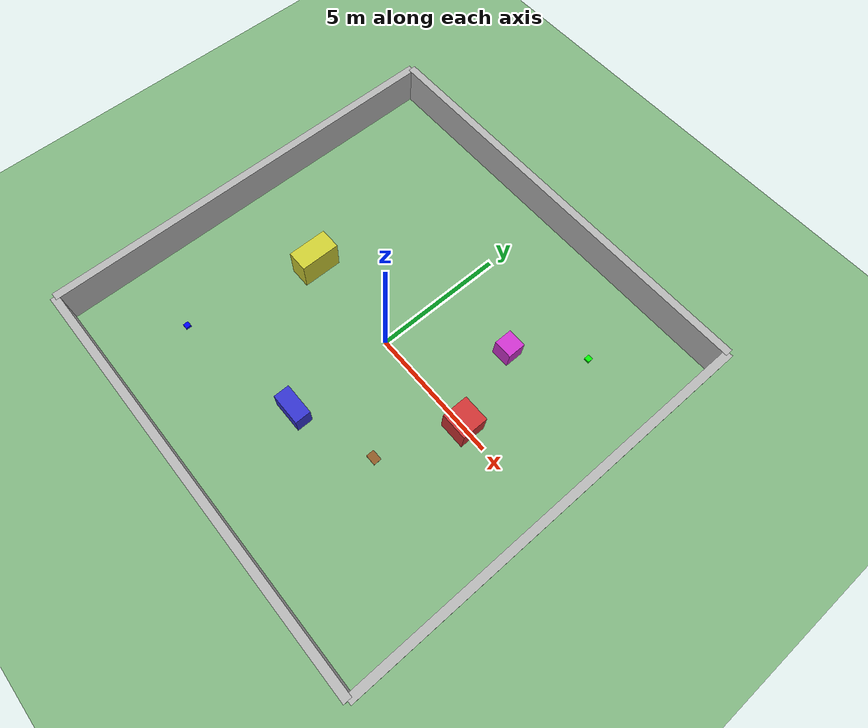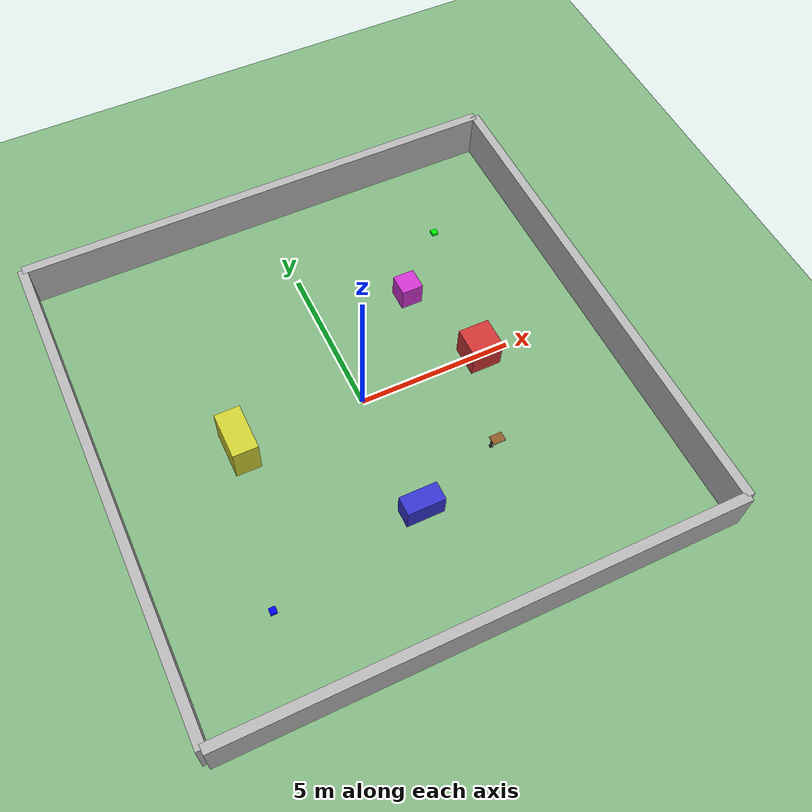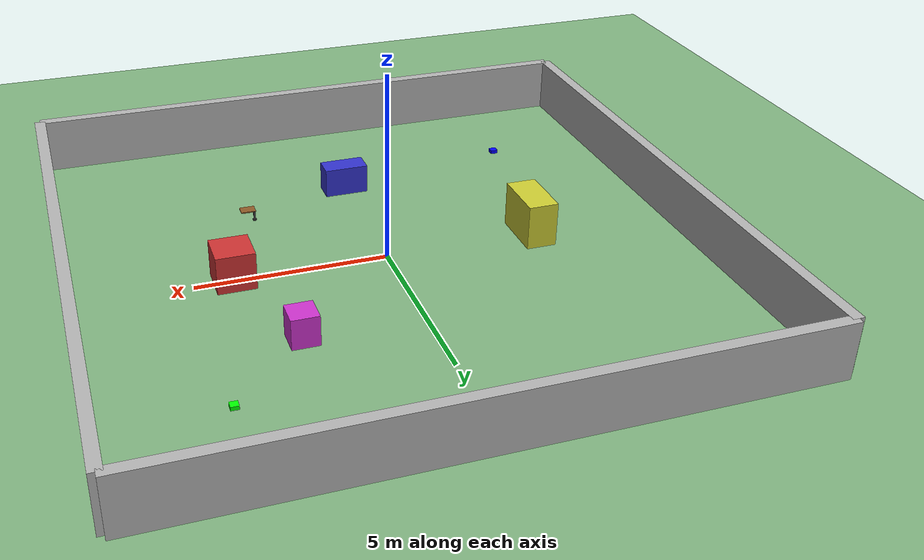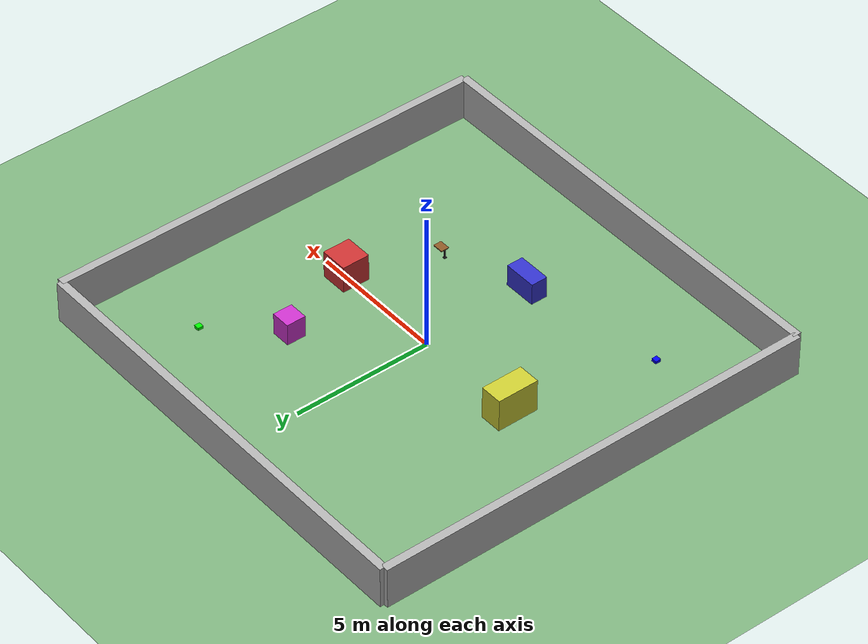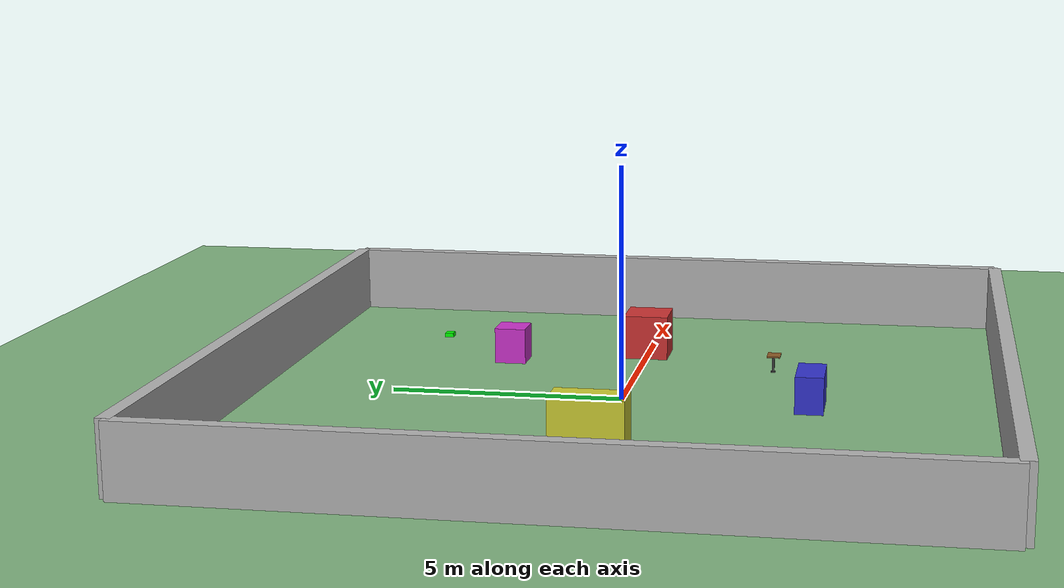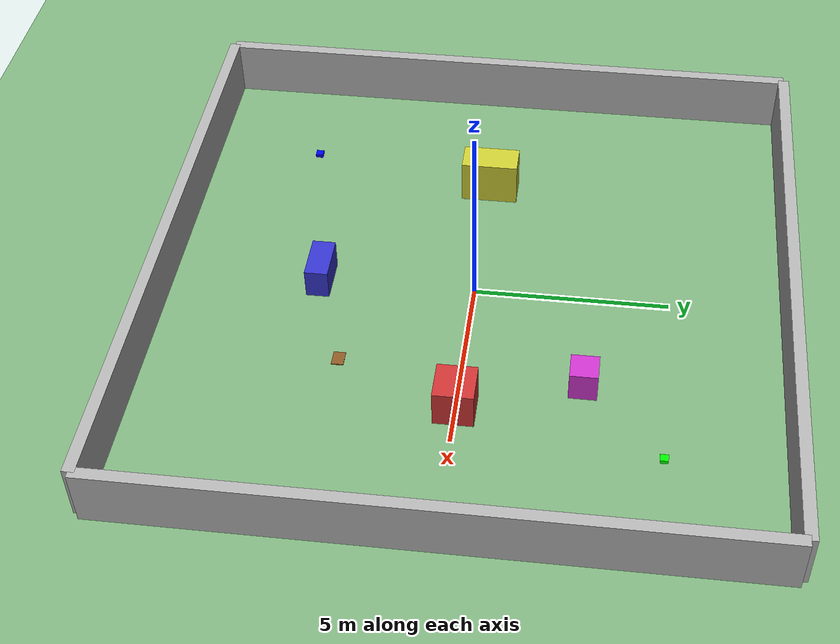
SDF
<?xml version="1.0" ?>
<sdf version="1.9">
  <world name="simple_test_world">
    <!-- Physics: values from ugv_gazebo_sim/scout/scout_gazebo_sim/worlds/weston_robot_empty.world -->
    <physics type="ode">
      <max_step_size>0.005</max_step_size>
      <real_time_factor>1</real_time_factor>
      <real_time_update_rate>200</real_time_update_rate>
      <gravity>0 0 -9.8</gravity>
      <ode>
        <solver>
          <type>quick</type>
          <iters>30</iters>
          <sor>1.0</sor>
        </solver>
      </ode>
    </physics>

    <!-- Scene settings -->
    <scene>
      <ambient>0.5 0.5 0.5 1</ambient>
      <background>0.8 0.8 0.8 1</background>
      <shadows>false</shadows>
    </scene>

    <!-- Load sensors system for LiDAR and other sensors -->
    <plugin filename="ignition-gazebo-sensors-system" name="gz::sim::systems::Sensors">
      <rendering>false</rendering>
      <sensor_update_rate>5</sensor_update_rate>
    </plugin>
    <!-- IMU system plugin -->
    <plugin filename="ignition-gazebo-imu-system" name="ignition::gazebo::systems::Imu">
    </plugin>
    <!-- Scene Broadcaster for GUI rendering -->
    <plugin filename="ignition-gazebo-scene-broadcaster-system" name="gz::sim::systems::SceneBroadcaster">
    </plugin>

    <!-- User Commands for model manipulation and spawn -->
    <plugin filename="ignition-gazebo-user-commands-system" name="gz::sim::systems::UserCommands">
    </plugin>

    <!-- Contact system for collision detection and friction -->
    <plugin filename="ignition-gazebo-contact-system" name="gz::sim::systems::Contact">
    </plugin>

    <!-- Physics system - required for diff drive to work -->
    <plugin filename="ignition-gazebo-physics-system" name="gz::sim::systems::Physics">
    </plugin>

    <!-- Ground plane -->
    <model name="ground_plane">
      <static>true</static>
      <pose>0 0 -0.001 0 0 0</pose>
      <link name="ground">
        <collision name="ground_plane_collision">
          <geometry>
            <plane>
              <normal>0 0 1</normal>
              <size>50 50</size>
            </plane>
          </geometry>
          <surface>
            <friction>
              <ode>
                <mu>100</mu>
                <mu2>50</mu2>
              </ode>
            </friction>
            <bounce/>
            <contact>
              <ode/>
            </contact>
          </surface>
          <max_contacts>10</max_contacts>
        </collision>
        <visual name="ground_plane_visual">
          <geometry>
            <plane>
              <normal>0 0 1</normal>
              <size>50 50</size>
            </plane>
          </geometry>
          <material>
            <ambient>0.5 0.7 0.5 1</ambient>
            <diffuse>0.5 0.7 0.5 1</diffuse>
            <specular>0 0 0 1</specular>
          </material>
        </visual>
        <velocity_decay>
          <linear>0</linear>
          <angular>0</angular>
        </velocity_decay>
        <self_collide>0</self_collide>
        <kinematic>0</kinematic>
        <gravity>1</gravity>
      </link>
    </model>

    <!-- Sun -->
    <light type="directional" name="sun">
      <cast_shadows>false</cast_shadows>
      <pose>0 0 10 0 0 0</pose>
      <diffuse>1 1 1 1</diffuse>
      <specular>0.1 0.1 0.1 1</specular>
      <attenuation>
        <range>1000</range>
        <constant>0.9</constant>
        <linear>0.01</linear>
        <quadratic>0.001</quadratic>
      </attenuation>
      <direction>-0.5 0.5 -0.5</direction>
    </light>

    <!-- Outer Wall - North -->
    <model name="wall_north">
      <static>true</static>
      <pose>0 8.0 0.75 0 0 0</pose>
      <link name="wall_north_link">
        <collision name="wall_north_collision">
          <geometry>
            <box>
              <size>16.0 0.3 1.5</size>
            </box>
          </geometry>
        </collision>
        <visual name="wall_north_visual">
          <geometry>
            <box>
              <size>16.0 0.3 1.5</size>
            </box>
          </geometry>
          <material>
            <ambient>0.6 0.6 0.6 1</ambient>
            <diffuse>0.7 0.7 0.7 1</diffuse>
          </material>
        </visual>
      </link>
    </model>

    <!-- Outer Wall - South -->
    <model name="wall_south">
      <static>true</static>
      <pose>0 -8.0 0.75 0 0 0</pose>
      <link name="wall_south_link">
        <collision name="wall_south_collision">
          <geometry>
            <box>
              <size>16.0 0.3 1.5</size>
            </box>
          </geometry>
        </collision>
        <visual name="wall_south_visual">
          <geometry>
            <box>
              <size>16.0 0.3 1.5</size>
            </box>
          </geometry>
          <material>
            <ambient>0.6 0.6 0.6 1</ambient>
            <diffuse>0.7 0.7 0.7 1</diffuse>
          </material>
        </visual>
      </link>
    </model>

    <!-- Outer Wall - East -->
    <model name="wall_east">
      <static>true</static>
      <pose>8.0 0 0.75 0 0 0</pose>
      <link name="wall_east_link">
        <collision name="wall_east_collision">
          <geometry>
            <box>
              <size>0.3 16.0 1.5</size>
            </box>
          </geometry>
        </collision>
        <visual name="wall_east_visual">
          <geometry>
            <box>
              <size>0.3 16.0 1.5</size>
            </box>
          </geometry>
          <material>
            <ambient>0.6 0.6 0.6 1</ambient>
            <diffuse>0.7 0.7 0.7 1</diffuse>
          </material>
        </visual>
      </link>
    </model>

    <!-- Outer Wall - West -->
    <model name="wall_west">
      <static>true</static>
      <pose>-8.0 0 0.75 0 0 0</pose>
      <link name="wall_west_link">
        <collision name="wall_west_collision">
          <geometry>
            <box>
              <size>0.3 16.0 1.5</size>
            </box>
          </geometry>
        </collision>
        <visual name="wall_west_visual">
          <geometry>
            <box>
              <size>0.3 16.0 1.5</size>
            </box>
          </geometry>
          <material>
            <ambient>0.6 0.6 0.6 1</ambient>
            <diffuse>0.7 0.7 0.7 1</diffuse>
          </material>
        </visual>
      </link>
    </model>

    <!-- Obstacle Box 1 - Front Center (Red) -->
    <model name="obstacle_box_1">
      <static>true</static>
      <pose>4.0 0.0 0.5 0 0 0</pose>
      <link name="obstacle_box_1_link">
        <collision name="obstacle_box_1_collision">
          <geometry>
            <box>
              <size>1.0 1.0 1.0</size>
            </box>
          </geometry>
        </collision>
        <visual name="obstacle_box_1_visual">
          <geometry>
            <box>
              <size>1.0 1.0 1.0</size>
            </box>
          </geometry>
          <material>
            <ambient>0.8 0.2 0.2 1</ambient>
            <diffuse>0.8 0.2 0.2 1</diffuse>
          </material>
        </visual>
      </link>
    </model>

    <!-- Obstacle Box 3 - Right Side (Blue) -->
    <model name="obstacle_box_3">
      <static>true</static>
      <pose>0.0 -4.0 0.4 0 0 0</pose>
      <link name="obstacle_box_3_link">
        <collision name="obstacle_box_3_collision">
          <geometry>
            <box>
              <size>1.2 0.6 0.8</size>
            </box>
          </geometry>
        </collision>
        <visual name="obstacle_box_3_visual">
          <geometry>
            <box>
              <size>1.2 0.6 0.8</size>
            </box>
          </geometry>
          <material>
            <ambient>0.2 0.2 0.8 1</ambient>
            <diffuse>0.2 0.2 0.8 1</diffuse>
          </material>
        </visual>
      </link>
    </model>

    <!-- Obstacle Box 4 - Behind (Yellow) -->
    <model name="obstacle_box_4">
      <static>true</static>
      <pose>-4.0 0.0 0.6 0 0 0</pose>
      <link name="obstacle_box_4_link">
        <collision name="obstacle_box_4_collision">
          <geometry>
            <box>
              <size>0.8 1.5 1.2</size>
            </box>
          </geometry>
        </collision>
        <visual name="obstacle_box_4_visual">
          <geometry>
            <box>
              <size>0.8 1.5 1.2</size>
            </box>
          </geometry>
          <material>
            <ambient>0.8 0.8 0.2 1</ambient>
            <diffuse>0.8 0.8 0.2 1</diffuse>
          </material>
        </visual>
      </link>
    </model>

    <!-- Obstacle Box 5 - Front Left (Purple) -->
    <model name="obstacle_box_5">
      <static>true</static>
      <pose>3.0 3.0 0.4 0 0 0</pose>
      <link name="obstacle_box_5_link">
        <collision name="obstacle_box_5_collision">
          <geometry>
            <box>
              <size>0.7 0.7 0.8</size>
            </box>
          </geometry>
        </collision>
        <visual name="obstacle_box_5_visual">
          <geometry>
            <box>
              <size>0.7 0.7 0.8</size>
            </box>
          </geometry>
          <material>
            <ambient>0.8 0.2 0.8 1</ambient>
            <diffuse>0.8 0.2 0.8 1</diffuse>
          </material>
        </visual>
      </link>
    </model>

    <!-- Navigation Waypoint Marker 1 -->
    <model name="waypoint_1">
      <static>true</static>
      <pose>5.0 5.0 0.05 0 0 0</pose>
      <link name="waypoint_1_link">
        <collision name="waypoint_1_collision">
          <geometry>
            <box>
              <size>0.2 0.2 0.1</size>
            </box>
          </geometry>
        </collision>
        <visual name="waypoint_1_visual">
          <geometry>
            <box>
              <size>0.2 0.2 0.1</size>
            </box>
          </geometry>
          <material>
            <ambient>0.0 1.0 0.0 1</ambient>
            <diffuse>0.0 1.0 0.0 1</diffuse>
          </material>
        </visual>
      </link>
    </model>

    <!-- Navigation Waypoint Marker 2 -->
    <model name="waypoint_2">
      <static>true</static>
      <pose>-5.0 -5.0 0.05 0 0 0</pose>
      <link name="waypoint_2_link">
        <collision name="waypoint_2_collision">
          <geometry>
            <box>
              <size>0.2 0.2 0.1</size>
            </box>
          </geometry>
        </collision>
        <visual name="waypoint_2_visual">
          <geometry>
            <box>
              <size>0.2 0.2 0.1</size>
            </box>
          </geometry>
          <material>
            <ambient>0.0 0.0 1.0 1</ambient>
            <diffuse>0.0 0.0 1.0 1</diffuse>
          </material>
        </visual>
      </link>
    </model>

    <!-- Deployment shelf: floating tabletop on a single central pillar  -->
    <!-- Tabletop 0.40 x 0.30 m, top surface at z = 0.35 m.             -->
    <!-- Single thin pillar 0.05 x 0.05 m, supporting the center.       -->
    <!-- Purely static prop, no IoT device on it until stage 5.        -->
    <model name="deployment_shelf">
      <static>true</static>
      <pose>3.0 -3.0 0 0 0 0</pose>
      <!-- Tabletop: top surface at 0.35 m, board thickness 0.03 m -->
      <link name="tabletop">
        <pose>0 0 0.335 0 0 0</pose>
        <collision name="tabletop_collision">
          <geometry>
            <box>
              <size>0.40 0.30 0.03</size>
            </box>
          </geometry>
        </collision>
        <visual name="tabletop_visual">
          <geometry>
            <box>
              <size>0.40 0.30 0.03</size>
            </box>
          </geometry>
          <material>
            <ambient>0.55 0.35 0.15 1</ambient>
            <diffuse>0.55 0.35 0.15 1</diffuse>
          </material>
        </visual>
      </link>
      <!-- Pillar at the back edge of the table so the robot can approach
           from the front without hitting anything. -->
      <link name="pillar">
        <pose>-0.18 0 0.16 0 0 0</pose>
        <collision name="pillar_collision">
          <geometry>
            <box>
              <size>0.05 0.05 0.32</size>
            </box>
          </geometry>
        </collision>
        <visual name="pillar_visual">
          <geometry>
            <box>
              <size>0.05 0.05 0.32</size>
            </box>
          </geometry>
          <material>
            <ambient>0.25 0.25 0.25 1</ambient>
            <diffuse>0.25 0.25 0.25 1</diffuse>
          </material>
        </visual>
      </link>
      <!-- Base plate under the pillar -->
      <link name="base_plate">
        <pose>-0.18 0 0.01 0 0 0</pose>
        <collision name="base_plate_collision">
          <geometry>
            <box>
              <size>0.10 0.10 0.02</size>
            </box>
          </geometry>
        </collision>
        <visual name="base_plate_visual">
          <geometry>
            <box>
              <size>0.10 0.10 0.02</size>
            </box>
          </geometry>
          <material>
            <ambient>0.25 0.25 0.25 1</ambient>
            <diffuse>0.25 0.25 0.25 1</diffuse>
          </material>
        </visual>
      </link>
    </model>

  </world>
</sdf>
